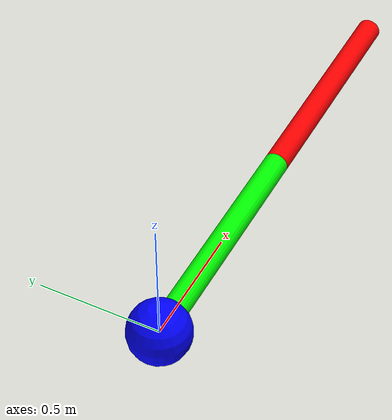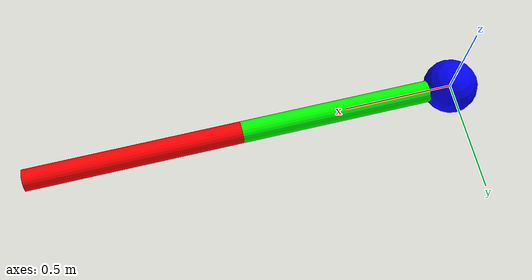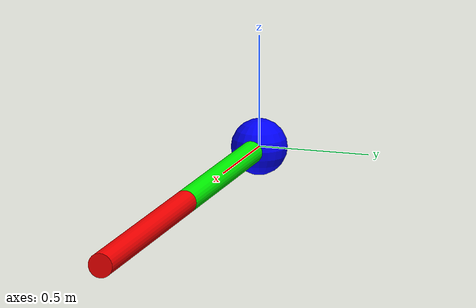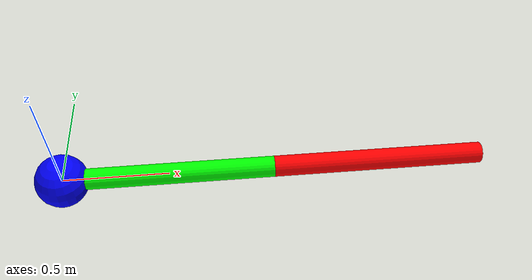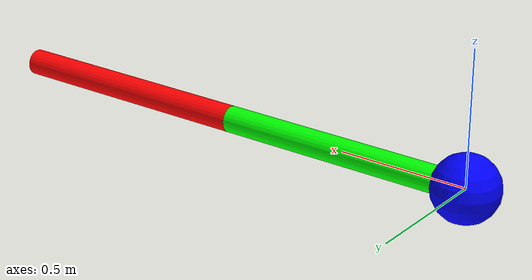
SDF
<?xml version="1.0"?>
<sdf version="1.7">
  <model name="acrobot">
    <!-- This sdf file produces a model with the default parameters documented
         in AcrobotParameters in make_acrobot_plant.h.
         They MUST be kept in sync. -->
    <link name="Link1">
      <!-- The origin of the Link1 frame is defined to be coincident with
           the origin of the x-z plane in the world frame. -->
      <pose>0 0 0 0 0 0</pose>
      <inertial>
        <pose>0.5 0 0 0 0 0</pose>
        <mass>1</mass>
        <!-- This inertia is based on a solid cylinder with
             radius=0.001 meters and height=1.0 meters. -->
        <!-- For this model we could make izz = 0 however, sdformat will throw
             an exception. -->
        <inertia>
          <ixx>5e-7</ixx>
          <iyy>0.083</iyy>
          <izz>0.083</izz>
          <ixy>0</ixy>
          <ixz>0</ixz>
          <iyz>0</iyz>
        </inertia>
      </inertial>
      <visual name="Link1_visual">
        <pose>0.5 0 0 0 1.5708 0</pose>
        <geometry>
          <cylinder>
            <length>1.0</length>
            <radius>0.05</radius>
          </cylinder>
        </geometry>
        <material>
          <diffuse>0 1 0 1</diffuse>
        </material>
      </visual>
      <!-- A visual to show the link's pivot point -->
      <visual name="Link1_pivot_visual">
        <!-- Pose of the sphere used for visual in Link1's frame -->
        <geometry>
          <sphere>
            <radius>0.125</radius>
          </sphere>
        </geometry>
        <material>
          <diffuse>0 0 1 1</diffuse>
        </material>
      </visual>
    </link>
    <joint name="ShoulderJoint" type="revolute">
      <child>Link1</child>
      <parent>world</parent>
      <axis>
        <xyz expressed_in="__model__">0 0 1</xyz>
        <limit>
          <!-- Drake parses a zero effort joint as an un-actuated joint. -->
        </limit>
        <dynamics>
          <damping>1.1</damping>
        </dynamics>
      </axis>
    </joint>
    <link name="Link2">
      <!-- The origin of the Link2 frame is defined to be coincident with
           the origin of the x-z plane in the elbow joint frame. -->
      <pose>1 0 0 0 0 0</pose>
      <inertial>
        <pose>0.5 0 0 0 0 0</pose>
        <mass>1</mass>
        <!-- This inertia is based on a solid cylinder with
             radius=1.0 meters and height=2.0 meters. -->
        <!-- For this model we could make izz = 0 however, sdformat will throw
             an exception. -->
        <inertia>
          <ixx>0.5e-7</ixx>
          <iyy>0.083</iyy>
          <izz>0.083</izz>
          <ixy>0</ixy>
          <ixz>0</ixz>
          <iyz>0</iyz>
        </inertia>
      </inertial>
      <visual name="Link2_visual">
        <pose>.5 0 0 0 1.5708 0</pose>
        <geometry>
          <cylinder>
            <length>1.0</length>
            <radius>0.05</radius>
          </cylinder>
        </geometry>
        <material>
          <diffuse>1 0 0 1</diffuse>
        </material>
      </visual>
    </link>
    <joint name="ElbowJoint" type="revolute">
      <parent>Link1</parent>
      <child>Link2</child>
      <!-- Pose X_CJ of the joint frame J in the frame C of the child link -->
      <axis>
        <xyz expressed_in="__model__">0 0 1</xyz>
        <limit>
          <!-- No limit provided. sdformat defaults to -1, which we parse as
               an actuated joint. -->
        </limit>
        <dynamics>
          <damping>1.1</damping>
        </dynamics>
      </axis>
    </joint>
    <frame name="end_effector" attached_to="Link2">
      <!-- The pose of the end_effector frame relative to the Link2 frame -->
      <!-- Assuming the length of Link2 is 1.0, the end effector is at the end of the link -->
      <pose>1 0 0 0 0 0</pose>
    </frame>
  </model>
</sdf>
